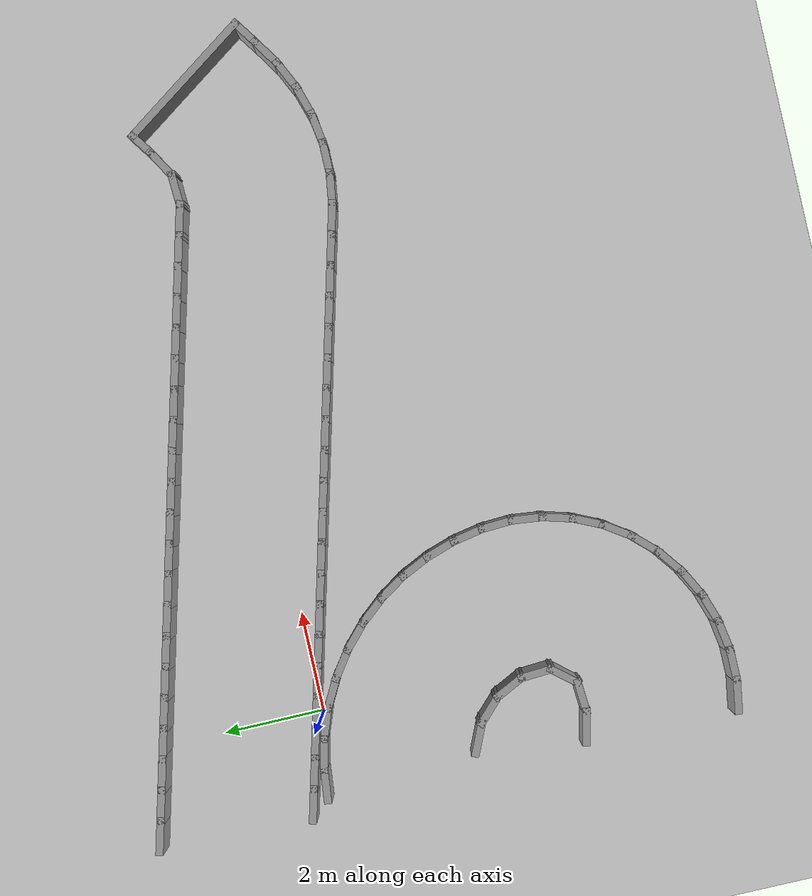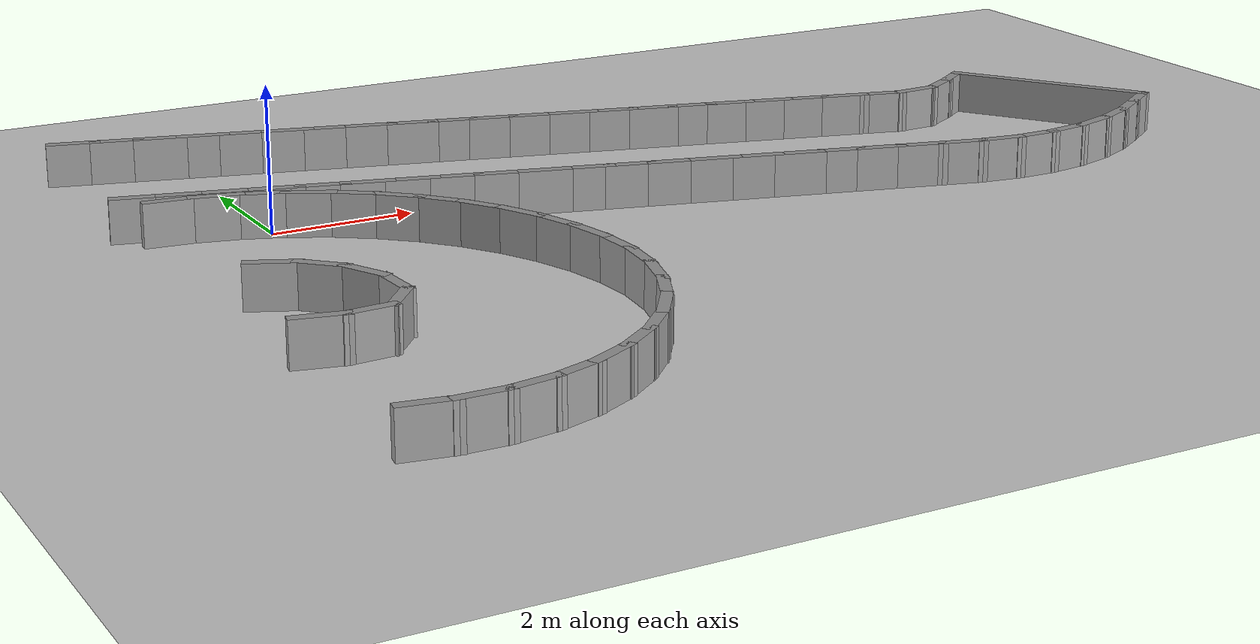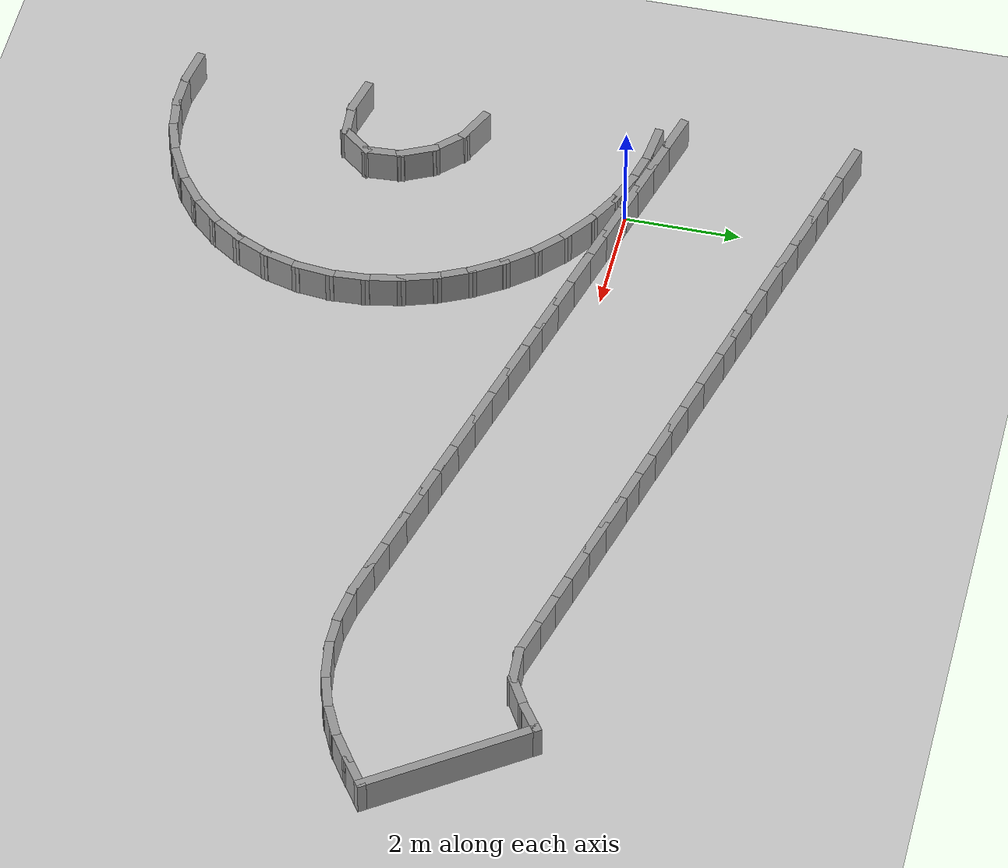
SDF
<sdf version="1.7">
 <world name="default">
  <model name="ground_plane">
   <static>1</static>
   <link name="link">
    <collision name="collision">
     <geometry><plane><normal>0 0 1</normal><size>100 100</size></plane></geometry>
     <surface><friction><ode><mu>100</mu><mu2>50</mu2></ode></friction></surface>
    </collision>
    <visual name="visual">
     <cast_shadows>0</cast_shadows>
     <geometry><plane><normal>0 0 1</normal><size>100 100</size></plane></geometry>
     <material>
      <script><uri>file://media/materials/scripts/gazebo.material</uri><name>Gazebo/Grey</name></script>
     </material>
    </visual>
   </link>
  </model>
  <model name="rand_turn_01">
   <link name="Wall_9">
    <collision name="Wall_9_Collision">
     <geometry><box><size>0.7500 0.1500 0.6000</size></box></geometry>
     <pose>0 0 0.3000 0 -0 0</pose>
    </collision>
    <visual name="Wall_9_Visual">
     <pose>0 0 0.3000 0 -0 0</pose>
     <geometry><box><size>0.7500 0.1500 0.6000</size></box></geometry>
     <material>
      <script><uri>file://media/materials/scripts/gazebo.material</uri><name>Gazebo/Grey</name></script>
      <ambient>1 1 1 1</ambient>
     </material>
    </visual>
    <pose>-1.3249 -4.9827 0 0 -0 -0.21750</pose>
   </link>
   <link name="Wall_10">
    <collision name="Wall_10_Collision">
     <geometry><box><size>0.7354 0.1500 0.6000</size></box></geometry>
     <pose>0 0 0.3000 0 -0 0</pose>
    </collision>
    <visual name="Wall_10_Visual">
     <pose>0 0 0.3000 0 -0 0</pose>
     <geometry><box><size>0.7354 0.1500 0.6000</size></box></geometry>
     <material>
      <script><uri>file://media/materials/scripts/gazebo.material</uri><name>Gazebo/Grey</name></script>
      <ambient>1 1 1 1</ambient>
     </material>
    </visual>
    <pose>-0.7400 -5.0276 0 0 -0 0.06791</pose>
   </link>
   <link name="Wall_11">
    <collision name="Wall_11_Collision">
     <geometry><box><size>0.7332 0.1500 0.6000</size></box></geometry>
     <pose>0 0 0.3000 0 -0 0</pose>
    </collision>
    <visual name="Wall_11_Visual">
     <pose>0 0 0.3000 0 -0 0</pose>
     <geometry><box><size>0.7332 0.1500 0.6000</size></box></geometry>
     <material>
      <script><uri>file://media/materials/scripts/gazebo.material</uri><name>Gazebo/Grey</name></script>
      <ambient>1 1 1 1</ambient>
     </material>
    </visual>
    <pose>-0.2620 -4.7831 0 0 -0 0.87923</pose>
   </link>
   <link name="Wall_12">
    <collision name="Wall_12_Collision">
     <geometry><box><size>0.7419 0.1500 0.6000</size></box></geometry>
     <pose>0 0 0.3000 0 -0 0</pose>
    </collision>
    <visual name="Wall_12_Visual">
     <pose>0 0 0.3000 0 -0 0</pose>
     <geometry><box><size>0.7419 0.1500 0.6000</size></box></geometry>
     <material>
      <script><uri>file://media/materials/scripts/gazebo.material</uri><name>Gazebo/Grey</name></script>
      <ambient>1 1 1 1</ambient>
     </material>
    </visual>
    <pose>-0.0944 -4.2631 0 0 -0 1.63312</pose>
   </link>
   <link name="Wall_13">
    <collision name="Wall_13_Collision">
     <geometry><box><size>0.7470 0.1500 0.6000</size></box></geometry>
     <pose>0 0 0.3000 0 -0 0</pose>
    </collision>
    <visual name="Wall_13_Visual">
     <pose>0 0 0.3000 0 -0 0</pose>
     <geometry><box><size>0.7470 0.1500 0.6000</size></box></geometry>
     <material>
      <script><uri>file://media/materials/scripts/gazebo.material</uri><name>Gazebo/Grey</name></script>
      <ambient>1 1 1 1</ambient>
     </material>
    </visual>
    <pose>-0.2440 -3.6996 0 0 -0 2.02571</pose>
   </link>
   <link name="Wall_14">
    <collision name="Wall_14_Collision">
     <geometry><box><size>0.7470 0.1500 0.6000</size></box></geometry>
     <pose>0 0 0.3000 0 -0 0</pose>
    </collision>
    <visual name="Wall_14_Visual">
     <pose>0 0 0.3000 0 -0 0</pose>
     <geometry><box><size>0.7470 0.1500 0.6000</size></box></geometry>
     <material>
      <script><uri>file://media/materials/scripts/gazebo.material</uri><name>Gazebo/Grey</name></script>
      <ambient>1 1 1 1</ambient>
     </material>
    </visual>
    <pose>-0.5888 -3.2229 0 0 -0 2.36825</pose>
   </link>
   <link name="Wall_15">
    <collision name="Wall_15_Collision">
     <geometry><box><size>0.7466 0.1500 0.6000</size></box></geometry>
     <pose>0 0 0.3000 0 -0 0</pose>
    </collision>
    <visual name="Wall_15_Visual">
     <pose>0 0 0.3000 0 -0 0</pose>
     <geometry><box><size>0.7466 0.1500 0.6000</size></box></geometry>
     <material>
      <script><uri>file://media/materials/scripts/gazebo.material</uri><name>Gazebo/Grey</name></script>
      <ambient>1 1 1 1</ambient>
     </material>
    </visual>
    <pose>-1.0746 -2.8924 0 0 -0 2.72031</pose>
   </link>
   <link name="Wall_55">
    <collision name="Wall_55_Collision">
     <geometry><box><size>0.7500 0.1500 0.6000</size></box></geometry>
     <pose>0 0 0.3000 0 -0 0</pose>
    </collision>
    <visual name="Wall_55_Visual">
     <pose>0 0 0.3000 0 -0 0</pose>
     <geometry><box><size>0.7500 0.1500 0.6000</size></box></geometry>
     <material>
      <script><uri>file://media/materials/scripts/gazebo.material</uri><name>Gazebo/Grey</name></script>
      <ambient>1 1 1 1</ambient>
     </material>
    </visual>
    <pose>-1.5636 3.5774 0 0 -0 -0.25506</pose>
   </link>
   <link name="Wall_56">
    <collision name="Wall_56_Collision">
     <geometry><box><size>0.7500 0.1500 0.6000</size></box></geometry>
     <pose>0 0 0.3000 0 -0 0</pose>
    </collision>
    <visual name="Wall_56_Visual">
     <pose>0 0 0.3000 0 -0 0</pose>
     <geometry><box><size>0.7500 0.1500 0.6000</size></box></geometry>
     <material>
      <script><uri>file://media/materials/scripts/gazebo.material</uri><name>Gazebo/Grey</name></script>
      <ambient>1 1 1 1</ambient>
     </material>
    </visual>
    <pose>-0.9831 3.4260 0 0 -0 -0.25506</pose>
   </link>
   <link name="Wall_57">
    <collision name="Wall_57_Collision">
     <geometry><box><size>0.7500 0.1500 0.6000</size></box></geometry>
     <pose>0 0 0.3000 0 -0 0</pose>
    </collision>
    <visual name="Wall_57_Visual">
     <pose>0 0 0.3000 0 -0 0</pose>
     <geometry><box><size>0.7500 0.1500 0.6000</size></box></geometry>
     <material>
      <script><uri>file://media/materials/scripts/gazebo.material</uri><name>Gazebo/Grey</name></script>
      <ambient>1 1 1 1</ambient>
     </material>
    </visual>
    <pose>-0.4025 3.2746 0 0 -0 -0.25506</pose>
   </link>
   <link name="Wall_58">
    <collision name="Wall_58_Collision">
     <geometry><box><size>0.7500 0.1500 0.6000</size></box></geometry>
     <pose>0 0 0.3000 0 -0 0</pose>
    </collision>
    <visual name="Wall_58_Visual">
     <pose>0 0 0.3000 0 -0 0</pose>
     <geometry><box><size>0.7500 0.1500 0.6000</size></box></geometry>
     <material>
      <script><uri>file://media/materials/scripts/gazebo.material</uri><name>Gazebo/Grey</name></script>
      <ambient>1 1 1 1</ambient>
     </material>
    </visual>
    <pose>0.1781 3.1233 0 0 -0 -0.25506</pose>
   </link>
   <link name="Wall_59">
    <collision name="Wall_59_Collision">
     <geometry><box><size>0.7500 0.1500 0.6000</size></box></geometry>
     <pose>0 0 0.3000 0 -0 0</pose>
    </collision>
    <visual name="Wall_59_Visual">
     <pose>0 0 0.3000 0 -0 0</pose>
     <geometry><box><size>0.7500 0.1500 0.6000</size></box></geometry>
     <material>
      <script><uri>file://media/materials/scripts/gazebo.material</uri><name>Gazebo/Grey</name></script>
      <ambient>1 1 1 1</ambient>
     </material>
    </visual>
    <pose>0.7587 2.9719 0 0 -0 -0.25506</pose>
   </link>
   <link name="Wall_60">
    <collision name="Wall_60_Collision">
     <geometry><box><size>0.7500 0.1500 0.6000</size></box></geometry>
     <pose>0 0 0.3000 0 -0 0</pose>
    </collision>
    <visual name="Wall_60_Visual">
     <pose>0 0 0.3000 0 -0 0</pose>
     <geometry><box><size>0.7500 0.1500 0.6000</size></box></geometry>
     <material>
      <script><uri>file://media/materials/scripts/gazebo.material</uri><name>Gazebo/Grey</name></script>
      <ambient>1 1 1 1</ambient>
     </material>
    </visual>
    <pose>1.3393 2.8205 0 0 -0 -0.25506</pose>
   </link>
   <link name="Wall_61">
    <collision name="Wall_61_Collision">
     <geometry><box><size>0.7500 0.1500 0.6000</size></box></geometry>
     <pose>0 0 0.3000 0 -0 0</pose>
    </collision>
    <visual name="Wall_61_Visual">
     <pose>0 0 0.3000 0 -0 0</pose>
     <geometry><box><size>0.7500 0.1500 0.6000</size></box></geometry>
     <material>
      <script><uri>file://media/materials/scripts/gazebo.material</uri><name>Gazebo/Grey</name></script>
      <ambient>1 1 1 1</ambient>
     </material>
    </visual>
    <pose>1.9199 2.6691 0 0 -0 -0.25506</pose>
   </link>
   <link name="Wall_62">
    <collision name="Wall_62_Collision">
     <geometry><box><size>0.7500 0.1500 0.6000</size></box></geometry>
     <pose>0 0 0.3000 0 -0 0</pose>
    </collision>
    <visual name="Wall_62_Visual">
     <pose>0 0 0.3000 0 -0 0</pose>
     <geometry><box><size>0.7500 0.1500 0.6000</size></box></geometry>
     <material>
      <script><uri>file://media/materials/scripts/gazebo.material</uri><name>Gazebo/Grey</name></script>
      <ambient>1 1 1 1</ambient>
     </material>
    </visual>
    <pose>2.5005 2.5177 0 0 -0 -0.25506</pose>
   </link>
   <link name="Wall_63">
    <collision name="Wall_63_Collision">
     <geometry><box><size>0.7500 0.1500 0.6000</size></box></geometry>
     <pose>0 0 0.3000 0 -0 0</pose>
    </collision>
    <visual name="Wall_63_Visual">
     <pose>0 0 0.3000 0 -0 0</pose>
     <geometry><box><size>0.7500 0.1500 0.6000</size></box></geometry>
     <material>
      <script><uri>file://media/materials/scripts/gazebo.material</uri><name>Gazebo/Grey</name></script>
      <ambient>1 1 1 1</ambient>
     </material>
    </visual>
    <pose>3.0811 2.3663 0 0 -0 -0.25506</pose>
   </link>
   <link name="Wall_64">
    <collision name="Wall_64_Collision">
     <geometry><box><size>0.7500 0.1500 0.6000</size></box></geometry>
     <pose>0 0 0.3000 0 -0 0</pose>
    </collision>
    <visual name="Wall_64_Visual">
     <pose>0 0 0.3000 0 -0 0</pose>
     <geometry><box><size>0.7500 0.1500 0.6000</size></box></geometry>
     <material>
      <script><uri>file://media/materials/scripts/gazebo.material</uri><name>Gazebo/Grey</name></script>
      <ambient>1 1 1 1</ambient>
     </material>
    </visual>
    <pose>3.6617 2.2150 0 0 -0 -0.25506</pose>
   </link>
   <link name="Wall_65">
    <collision name="Wall_65_Collision">
     <geometry><box><size>0.7500 0.1500 0.6000</size></box></geometry>
     <pose>0 0 0.3000 0 -0 0</pose>
    </collision>
    <visual name="Wall_65_Visual">
     <pose>0 0 0.3000 0 -0 0</pose>
     <geometry><box><size>0.7500 0.1500 0.6000</size></box></geometry>
     <material>
      <script><uri>file://media/materials/scripts/gazebo.material</uri><name>Gazebo/Grey</name></script>
      <ambient>1 1 1 1</ambient>
     </material>
    </visual>
    <pose>4.2422 2.0636 0 0 -0 -0.25506</pose>
   </link>
   <link name="Wall_66">
    <collision name="Wall_66_Collision">
     <geometry><box><size>0.7500 0.1500 0.6000</size></box></geometry>
     <pose>0 0 0.3000 0 -0 0</pose>
    </collision>
    <visual name="Wall_66_Visual">
     <pose>0 0 0.3000 0 -0 0</pose>
     <geometry><box><size>0.7500 0.1500 0.6000</size></box></geometry>
     <material>
      <script><uri>file://media/materials/scripts/gazebo.material</uri><name>Gazebo/Grey</name></script>
      <ambient>1 1 1 1</ambient>
     </material>
    </visual>
    <pose>4.8228 1.9122 0 0 -0 -0.25506</pose>
   </link>
   <link name="Wall_67">
    <collision name="Wall_67_Collision">
     <geometry><box><size>0.7500 0.1500 0.6000</size></box></geometry>
     <pose>0 0 0.3000 0 -0 0</pose>
    </collision>
    <visual name="Wall_67_Visual">
     <pose>0 0 0.3000 0 -0 0</pose>
     <geometry><box><size>0.7500 0.1500 0.6000</size></box></geometry>
     <material>
      <script><uri>file://media/materials/scripts/gazebo.material</uri><name>Gazebo/Grey</name></script>
      <ambient>1 1 1 1</ambient>
     </material>
    </visual>
    <pose>5.4034 1.7608 0 0 -0 -0.25506</pose>
   </link>
   <link name="Wall_68">
    <collision name="Wall_68_Collision">
     <geometry><box><size>0.7500 0.1500 0.6000</size></box></geometry>
     <pose>0 0 0.3000 0 -0 0</pose>
    </collision>
    <visual name="Wall_68_Visual">
     <pose>0 0 0.3000 0 -0 0</pose>
     <geometry><box><size>0.7500 0.1500 0.6000</size></box></geometry>
     <material>
      <script><uri>file://media/materials/scripts/gazebo.material</uri><name>Gazebo/Grey</name></script>
      <ambient>1 1 1 1</ambient>
     </material>
    </visual>
    <pose>5.9840 1.6094 0 0 -0 -0.25506</pose>
   </link>
   <link name="Wall_69">
    <collision name="Wall_69_Collision">
     <geometry><box><size>0.7500 0.1500 0.6000</size></box></geometry>
     <pose>0 0 0.3000 0 -0 0</pose>
    </collision>
    <visual name="Wall_69_Visual">
     <pose>0 0 0.3000 0 -0 0</pose>
     <geometry><box><size>0.7500 0.1500 0.6000</size></box></geometry>
     <material>
      <script><uri>file://media/materials/scripts/gazebo.material</uri><name>Gazebo/Grey</name></script>
      <ambient>1 1 1 1</ambient>
     </material>
    </visual>
    <pose>6.5646 1.4580 0 0 -0 -0.25506</pose>
   </link>
   <link name="Wall_70">
    <collision name="Wall_70_Collision">
     <geometry><box><size>0.7500 0.1500 0.6000</size></box></geometry>
     <pose>0 0 0.3000 0 -0 0</pose>
    </collision>
    <visual name="Wall_70_Visual">
     <pose>0 0 0.3000 0 -0 0</pose>
     <geometry><box><size>0.7500 0.1500 0.6000</size></box></geometry>
     <material>
      <script><uri>file://media/materials/scripts/gazebo.material</uri><name>Gazebo/Grey</name></script>
      <ambient>1 1 1 1</ambient>
     </material>
    </visual>
    <pose>7.1452 1.3067 0 0 -0 -0.25506</pose>
   </link>
   <link name="Wall_71">
    <collision name="Wall_71_Collision">
     <geometry><box><size>0.7500 0.1500 0.6000</size></box></geometry>
     <pose>0 0 0.3000 0 -0 0</pose>
    </collision>
    <visual name="Wall_71_Visual">
     <pose>0 0 0.3000 0 -0 0</pose>
     <geometry><box><size>0.7500 0.1500 0.6000</size></box></geometry>
     <material>
      <script><uri>file://media/materials/scripts/gazebo.material</uri><name>Gazebo/Grey</name></script>
      <ambient>1 1 1 1</ambient>
     </material>
    </visual>
    <pose>7.7258 1.1553 0 0 -0 -0.25506</pose>
   </link>
   <link name="Wall_72">
    <collision name="Wall_72_Collision">
     <geometry><box><size>0.7500 0.1500 0.6000</size></box></geometry>
     <pose>0 0 0.3000 0 -0 0</pose>
    </collision>
    <visual name="Wall_72_Visual">
     <pose>0 0 0.3000 0 -0 0</pose>
     <geometry><box><size>0.7500 0.1500 0.6000</size></box></geometry>
     <material>
      <script><uri>file://media/materials/scripts/gazebo.material</uri><name>Gazebo/Grey</name></script>
      <ambient>1 1 1 1</ambient>
     </material>
    </visual>
    <pose>8.3064 1.0039 0 0 -0 -0.25506</pose>
   </link>
   <link name="Wall_73">
    <collision name="Wall_73_Collision">
     <geometry><box><size>0.7500 0.1500 0.6000</size></box></geometry>
     <pose>0 0 0.3000 0 -0 0</pose>
    </collision>
    <visual name="Wall_73_Visual">
     <pose>0 0 0.3000 0 -0 0</pose>
     <geometry><box><size>0.7500 0.1500 0.6000</size></box></geometry>
     <material>
      <script><uri>file://media/materials/scripts/gazebo.material</uri><name>Gazebo/Grey</name></script>
      <ambient>1 1 1 1</ambient>
     </material>
    </visual>
    <pose>8.8869 0.8525 0 0 -0 -0.25506</pose>
   </link>
   <link name="Wall_74">
    <collision name="Wall_74_Collision">
     <geometry><box><size>0.7500 0.1500 0.6000</size></box></geometry>
     <pose>0 0 0.3000 0 -0 0</pose>
    </collision>
    <visual name="Wall_74_Visual">
     <pose>0 0 0.3000 0 -0 0</pose>
     <geometry><box><size>0.7500 0.1500 0.6000</size></box></geometry>
     <material>
      <script><uri>file://media/materials/scripts/gazebo.material</uri><name>Gazebo/Grey</name></script>
      <ambient>1 1 1 1</ambient>
     </material>
    </visual>
    <pose>9.4675 0.7011 0 0 -0 -0.25506</pose>
   </link>
   <link name="Wall_75">
    <collision name="Wall_75_Collision">
     <geometry><box><size>0.7500 0.1500 0.6000</size></box></geometry>
     <pose>0 0 0.3000 0 -0 0</pose>
    </collision>
    <visual name="Wall_75_Visual">
     <pose>0 0 0.3000 0 -0 0</pose>
     <geometry><box><size>0.7500 0.1500 0.6000</size></box></geometry>
     <material>
      <script><uri>file://media/materials/scripts/gazebo.material</uri><name>Gazebo/Grey</name></script>
      <ambient>1 1 1 1</ambient>
     </material>
    </visual>
    <pose>10.0482 0.5502 0 0 -0 -0.25346</pose>
   </link>
   <link name="Wall_76">
    <collision name="Wall_76_Collision">
     <geometry><box><size>0.7429 0.1500 0.6000</size></box></geometry>
     <pose>0 0 0.3000 0 -0 0</pose>
    </collision>
    <visual name="Wall_76_Visual">
     <pose>0 0 0.3000 0 -0 0</pose>
     <geometry><box><size>0.7429 0.1500 0.6000</size></box></geometry>
     <material>
      <script><uri>file://media/materials/scripts/gazebo.material</uri><name>Gazebo/Grey</name></script>
      <ambient>1 1 1 1</ambient>
     </material>
    </visual>
    <pose>10.6347 0.4905 0 0 -0 0.05247</pose>
   </link>
   <link name="Wall_77">
    <collision name="Wall_77_Collision">
     <geometry><box><size>0.7473 0.1500 0.6000</size></box></geometry>
     <pose>0 0 0.3000 0 -0 0</pose>
    </collision>
    <visual name="Wall_77_Visual">
     <pose>0 0 0.3000 0 -0 0</pose>
     <geometry><box><size>0.7473 0.1500 0.6000</size></box></geometry>
     <material>
      <script><uri>file://media/materials/scripts/gazebo.material</uri><name>Gazebo/Grey</name></script>
      <ambient>1 1 1 1</ambient>
     </material>
    </visual>
    <pose>11.1882 0.6574 0 0 -0 0.53139</pose>
   </link>
   <link name="Wall_78">
    <collision name="Wall_78_Collision">
     <geometry><box><size>0.6250 0.1500 0.6000</size></box></geometry>
     <pose>0 0 0.3000 0 -0 0</pose>
    </collision>
    <visual name="Wall_78_Visual">
     <pose>0 0 0.3000 0 -0 0</pose>
     <geometry><box><size>0.6250 0.1500 0.6000</size></box></geometry>
     <material>
      <script><uri>file://media/materials/scripts/gazebo.material</uri><name>Gazebo/Grey</name></script>
      <ambient>1 1 1 1</ambient>
     </material>
    </visual>
    <pose>11.6405 0.9446 0 0 -0 0.60888</pose>
   </link>
   <link name="Wall_89">
    <collision name="Wall_89_Collision">
     <geometry><box><size>0.7495 0.1500 0.6000</size></box></geometry>
     <pose>0 0 0.3000 0 -0 0</pose>
    </collision>
    <visual name="Wall_89_Visual">
     <pose>0 0 0.3000 0 -0 0</pose>
     <geometry><box><size>0.7495 0.1500 0.6000</size></box></geometry>
     <material>
      <script><uri>file://media/materials/scripts/gazebo.material</uri><name>Gazebo/Grey</name></script>
      <ambient>1 1 1 1</ambient>
     </material>
    </visual>
    <pose>-1.3753 -7.9876 0 0 -0 -0.16103</pose>
   </link>
   <link name="Wall_90">
    <collision name="Wall_90_Collision">
     <geometry><box><size>0.7493 0.1500 0.6000</size></box></geometry>
     <pose>0 0 0.3000 0 -0 0</pose>
    </collision>
    <visual name="Wall_90_Visual">
     <pose>0 0 0.3000 0 -0 0</pose>
     <geometry><box><size>0.7493 0.1500 0.6000</size></box></geometry>
     <material>
      <script><uri>file://media/materials/scripts/gazebo.material</uri><name>Gazebo/Grey</name></script>
      <ambient>1 1 1 1</ambient>
     </material>
    </visual>
    <pose>-0.7798 -8.0354 0 0 -0 0.00072</pose>
   </link>
   <link name="Wall_91">
    <collision name="Wall_91_Collision">
     <geometry><box><size>0.7493 0.1500 0.6000</size></box></geometry>
     <pose>0 0 0.3000 0 -0 0</pose>
    </collision>
    <visual name="Wall_91_Visual">
     <pose>0 0 0.3000 0 -0 0</pose>
     <geometry><box><size>0.7493 0.1500 0.6000</size></box></geometry>
     <material>
      <script><uri>file://media/materials/scripts/gazebo.material</uri><name>Gazebo/Grey</name></script>
      <ambient>1 1 1 1</ambient>
     </material>
    </visual>
    <pose>-0.1844 -7.9871 0 0 -0 0.16119</pose>
   </link>
   <link name="Wall_92">
    <collision name="Wall_92_Collision">
     <geometry><box><size>0.7493 0.1500 0.6000</size></box></geometry>
     <pose>0 0 0.3000 0 -0 0</pose>
    </collision>
    <visual name="Wall_92_Visual">
     <pose>0 0 0.3000 0 -0 0</pose>
     <geometry><box><size>0.7493 0.1500 0.6000</size></box></geometry>
     <material>
      <script><uri>file://media/materials/scripts/gazebo.material</uri><name>Gazebo/Grey</name></script>
      <ambient>1 1 1 1</ambient>
     </material>
    </visual>
    <pose>0.3954 -7.8435 0 0 -0 0.32450</pose>
   </link>
   <link name="Wall_93">
    <collision name="Wall_93_Collision">
     <geometry><box><size>0.7493 0.1500 0.6000</size></box></geometry>
     <pose>0 0 0.3000 0 -0 0</pose>
    </collision>
    <visual name="Wall_93_Visual">
     <pose>0 0 0.3000 0 -0 0</pose>
     <geometry><box><size>0.7493 0.1500 0.6000</size></box></geometry>
     <material>
      <script><uri>file://media/materials/scripts/gazebo.material</uri><name>Gazebo/Grey</name></script>
      <ambient>1 1 1 1</ambient>
     </material>
    </visual>
    <pose>0.9442 -7.6077 0 0 -0 0.48725</pose>
   </link>
   <link name="Wall_94">
    <collision name="Wall_94_Collision">
     <geometry><box><size>0.7493 0.1500 0.6000</size></box></geometry>
     <pose>0 0 0.3000 0 -0 0</pose>
    </collision>
    <visual name="Wall_94_Visual">
     <pose>0 0 0.3000 0 -0 0</pose>
     <geometry><box><size>0.7493 0.1500 0.6000</size></box></geometry>
     <material>
      <script><uri>file://media/materials/scripts/gazebo.material</uri><name>Gazebo/Grey</name></script>
      <ambient>1 1 1 1</ambient>
     </material>
    </visual>
    <pose>1.4478 -7.2865 0 0 -0 0.64822</pose>
   </link>
   <link name="Wall_95">
    <collision name="Wall_95_Collision">
     <geometry><box><size>0.7493 0.1500 0.6000</size></box></geometry>
     <pose>0 0 0.3000 0 -0 0</pose>
    </collision>
    <visual name="Wall_95_Visual">
     <pose>0 0 0.3000 0 -0 0</pose>
     <geometry><box><size>0.7493 0.1500 0.6000</size></box></geometry>
     <material>
      <script><uri>file://media/materials/scripts/gazebo.material</uri><name>Gazebo/Grey</name></script>
      <ambient>1 1 1 1</ambient>
     </material>
    </visual>
    <pose>1.8926 -6.8878 0 0 -0 0.81331</pose>
   </link>
   <link name="Wall_96">
    <collision name="Wall_96_Collision">
     <geometry><box><size>0.7493 0.1500 0.6000</size></box></geometry>
     <pose>0 0 0.3000 0 -0 0</pose>
    </collision>
    <visual name="Wall_96_Visual">
     <pose>0 0 0.3000 0 -0 0</pose>
     <geometry><box><size>0.7493 0.1500 0.6000</size></box></geometry>
     <material>
      <script><uri>file://media/materials/scripts/gazebo.material</uri><name>Gazebo/Grey</name></script>
      <ambient>1 1 1 1</ambient>
     </material>
    </visual>
    <pose>2.2669 -6.4223 0 0 -0 0.97378</pose>
   </link>
   <link name="Wall_97">
    <collision name="Wall_97_Collision">
     <geometry><box><size>0.7493 0.1500 0.6000</size></box></geometry>
     <pose>0 0 0.3000 0 -0 0</pose>
    </collision>
    <visual name="Wall_97_Visual">
     <pose>0 0 0.3000 0 -0 0</pose>
     <geometry><box><size>0.7493 0.1500 0.6000</size></box></geometry>
     <material>
      <script><uri>file://media/materials/scripts/gazebo.material</uri><name>Gazebo/Grey</name></script>
      <ambient>1 1 1 1</ambient>
     </material>
    </visual>
    <pose>2.5612 -5.9025 0 0 -0 1.13752</pose>
   </link>
   <link name="Wall_98">
    <collision name="Wall_98_Collision">
     <geometry><box><size>0.7493 0.1500 0.6000</size></box></geometry>
     <pose>0 0 0.3000 0 -0 0</pose>
    </collision>
    <visual name="Wall_98_Visual">
     <pose>0 0 0.3000 0 -0 0</pose>
     <geometry><box><size>0.7493 0.1500 0.6000</size></box></geometry>
     <material>
      <script><uri>file://media/materials/scripts/gazebo.material</uri><name>Gazebo/Grey</name></script>
      <ambient>1 1 1 1</ambient>
     </material>
    </visual>
    <pose>2.7672 -5.3419 0 0 -0 1.29983</pose>
   </link>
   <link name="Wall_99">
    <collision name="Wall_99_Collision">
     <geometry><box><size>0.7493 0.1500 0.6000</size></box></geometry>
     <pose>0 0 0.3000 0 -0 0</pose>
    </collision>
    <visual name="Wall_99_Visual">
     <pose>0 0 0.3000 0 -0 0</pose>
     <geometry><box><size>0.7493 0.1500 0.6000</size></box></geometry>
     <material>
      <script><uri>file://media/materials/scripts/gazebo.material</uri><name>Gazebo/Grey</name></script>
      <ambient>1 1 1 1</ambient>
     </material>
    </visual>
    <pose>2.8801 -4.7553 0 0 -0 1.46123</pose>
   </link>
   <link name="Wall_100">
    <collision name="Wall_100_Collision">
     <geometry><box><size>0.7493 0.1500 0.6000</size></box></geometry>
     <pose>0 0 0.3000 0 -0 0</pose>
    </collision>
    <visual name="Wall_100_Visual">
     <pose>0 0 0.3000 0 -0 0</pose>
     <geometry><box><size>0.7493 0.1500 0.6000</size></box></geometry>
     <material>
      <script><uri>file://media/materials/scripts/gazebo.material</uri><name>Gazebo/Grey</name></script>
      <ambient>1 1 1 1</ambient>
     </material>
    </visual>
    <pose>2.8967 -4.1582 0 0 -0 1.62496</pose>
   </link>
   <link name="Wall_101">
    <collision name="Wall_101_Collision">
     <geometry><box><size>0.7496 0.1500 0.6000</size></box></geometry>
     <pose>0 0 0.3000 0 -0 0</pose>
    </collision>
    <visual name="Wall_101_Visual">
     <pose>0 0 0.3000 0 -0 0</pose>
     <geometry><box><size>0.7496 0.1500 0.6000</size></box></geometry>
     <material>
      <script><uri>file://media/materials/scripts/gazebo.material</uri><name>Gazebo/Grey</name></script>
      <ambient>1 1 1 1</ambient>
     </material>
    </visual>
    <pose>2.8236 -3.5647 0 0 -0 1.76172</pose>
   </link>
   <link name="Wall_102">
    <collision name="Wall_102_Collision">
     <geometry><box><size>0.7496 0.1500 0.6000</size></box></geometry>
     <pose>0 0 0.3000 0 -0 0</pose>
    </collision>
    <visual name="Wall_102_Visual">
     <pose>0 0 0.3000 0 -0 0</pose>
     <geometry><box><size>0.7496 0.1500 0.6000</size></box></geometry>
     <material>
      <script><uri>file://media/materials/scripts/gazebo.material</uri><name>Gazebo/Grey</name></script>
      <ambient>1 1 1 1</ambient>
     </material>
    </visual>
    <pose>2.6729 -2.9856 0 0 -0 1.88892</pose>
   </link>
   <link name="Wall_103">
    <collision name="Wall_103_Collision">
     <geometry><box><size>0.7496 0.1500 0.6000</size></box></geometry>
     <pose>0 0 0.3000 0 -0 0</pose>
    </collision>
    <visual name="Wall_103_Visual">
     <pose>0 0 0.3000 0 -0 0</pose>
     <geometry><box><size>0.7496 0.1500 0.6000</size></box></geometry>
     <material>
      <script><uri>file://media/materials/scripts/gazebo.material</uri><name>Gazebo/Grey</name></script>
      <ambient>1 1 1 1</ambient>
     </material>
    </visual>
    <pose>2.4500 -2.4303 0 0 -0 2.01611</pose>
   </link>
   <link name="Wall_104">
    <collision name="Wall_104_Collision">
     <geometry><box><size>0.7496 0.1500 0.6000</size></box></geometry>
     <pose>0 0 0.3000 0 -0 0</pose>
    </collision>
    <visual name="Wall_104_Visual">
     <pose>0 0 0.3000 0 -0 0</pose>
     <geometry><box><size>0.7496 0.1500 0.6000</size></box></geometry>
     <material>
      <script><uri>file://media/materials/scripts/gazebo.material</uri><name>Gazebo/Grey</name></script>
      <ambient>1 1 1 1</ambient>
     </material>
    </visual>
    <pose>2.1583 -1.9078 0 0 -0 2.14403</pose>
   </link>
   <link name="Wall_105">
    <collision name="Wall_105_Collision">
     <geometry><box><size>0.7496 0.1500 0.6000</size></box></geometry>
     <pose>0 0 0.3000 0 -0 0</pose>
    </collision>
    <visual name="Wall_105_Visual">
     <pose>0 0 0.3000 0 -0 0</pose>
     <geometry><box><size>0.7496 0.1500 0.6000</size></box></geometry>
     <material>
      <script><uri>file://media/materials/scripts/gazebo.material</uri><name>Gazebo/Grey</name></script>
      <ambient>1 1 1 1</ambient>
     </material>
    </visual>
    <pose>1.8024 -1.4268 0 0 -0 2.27138</pose>
   </link>
   <link name="Wall_106">
    <collision name="Wall_106_Collision">
     <geometry><box><size>0.7496 0.1500 0.6000</size></box></geometry>
     <pose>0 0 0.3000 0 -0 0</pose>
    </collision>
    <visual name="Wall_106_Visual">
     <pose>0 0 0.3000 0 -0 0</pose>
     <geometry><box><size>0.7496 0.1500 0.6000</size></box></geometry>
     <material>
      <script><uri>file://media/materials/scripts/gazebo.material</uri><name>Gazebo/Grey</name></script>
      <ambient>1 1 1 1</ambient>
     </material>
    </visual>
    <pose>1.3884 -0.9948 0 0 -0 2.39858</pose>
   </link>
   <link name="Wall_107">
    <collision name="Wall_107_Collision">
     <geometry><box><size>0.7496 0.1500 0.6000</size></box></geometry>
     <pose>0 0 0.3000 0 -0 0</pose>
    </collision>
    <visual name="Wall_107_Visual">
     <pose>0 0 0.3000 0 -0 0</pose>
     <geometry><box><size>0.7496 0.1500 0.6000</size></box></geometry>
     <material>
      <script><uri>file://media/materials/scripts/gazebo.material</uri><name>Gazebo/Grey</name></script>
      <ambient>1 1 1 1</ambient>
     </material>
    </visual>
    <pose>0.9229 -0.6188 0 0 -0 2.52578</pose>
   </link>
   <link name="Wall_108">
    <collision name="Wall_108_Collision">
     <geometry><box><size>0.7495 0.1500 0.6000</size></box></geometry>
     <pose>0 0 0.3000 0 -0 0</pose>
    </collision>
    <visual name="Wall_108_Visual">
     <pose>0 0 0.3000 0 -0 0</pose>
     <geometry><box><size>0.7495 0.1500 0.6000</size></box></geometry>
     <material>
      <script><uri>file://media/materials/scripts/gazebo.material</uri><name>Gazebo/Grey</name></script>
      <ambient>1 1 1 1</ambient>
     </material>
    </visual>
    <pose>0.4134 -0.3052 0 0 -0 2.65387</pose>
   </link>
   <link name="Wall_109">
    <collision name="Wall_109_Collision">
     <geometry><box><size>0.7495 0.1500 0.6000</size></box></geometry>
     <pose>0 0 0.3000 0 -0 0</pose>
    </collision>
    <visual name="Wall_109_Visual">
     <pose>0 0 0.3000 0 -0 0</pose>
     <geometry><box><size>0.7495 0.1500 0.6000</size></box></geometry>
     <material>
      <script><uri>file://media/materials/scripts/gazebo.material</uri><name>Gazebo/Grey</name></script>
      <ambient>1 1 1 1</ambient>
     </material>
    </visual>
    <pose>-0.1325 -0.0605 0 0 -0 2.78659</pose>
   </link>
   <link name="Wall_110">
    <collision name="Wall_110_Collision">
     <geometry><box><size>0.7496 0.1500 0.6000</size></box></geometry>
     <pose>0 0 0.3000 0 -0 0</pose>
    </collision>
    <visual name="Wall_110_Visual">
     <pose>0 0 0.3000 0 -0 0</pose>
     <geometry><box><size>0.7496 0.1500 0.6000</size></box></geometry>
     <material>
      <script><uri>file://media/materials/scripts/gazebo.material</uri><name>Gazebo/Grey</name></script>
      <ambient>1 1 1 1</ambient>
     </material>
    </visual>
    <pose>-0.7056 0.1113 0 0 -0 2.91398</pose>
   </link>
   <link name="Wall_111">
    <collision name="Wall_111_Collision">
     <geometry><box><size>0.7496 0.1500 0.6000</size></box></geometry>
     <pose>0 0 0.3000 0 -0 0</pose>
    </collision>
    <visual name="Wall_111_Visual">
     <pose>0 0 0.3000 0 -0 0</pose>
     <geometry><box><size>0.7496 0.1500 0.6000</size></box></geometry>
     <material>
      <script><uri>file://media/materials/scripts/gazebo.material</uri><name>Gazebo/Grey</name></script>
      <ambient>1 1 1 1</ambient>
     </material>
    </visual>
    <pose>-1.2959 0.2090 0 0 -0 3.04127</pose>
   </link>
   <link name="Wall_135">
    <collision name="Wall_135_Collision">
     <geometry><box><size>0.7500 0.1500 0.6000</size></box></geometry>
     <pose>0 0 0.3000 0 -0 0</pose>
    </collision>
    <visual name="Wall_135_Visual">
     <pose>0 0 0.3000 0 -0 0</pose>
     <geometry><box><size>0.7500 0.1500 0.6000</size></box></geometry>
     <material>
      <script><uri>file://media/materials/scripts/gazebo.material</uri><name>Gazebo/Grey</name></script>
      <ambient>1 1 1 1</ambient>
     </material>
    </visual>
    <pose>-1.6226 0.5319 0 0 -0 -0.25506</pose>
   </link>
   <link name="Wall_136">
    <collision name="Wall_136_Collision">
     <geometry><box><size>0.7500 0.1500 0.6000</size></box></geometry>
     <pose>0 0 0.3000 0 -0 0</pose>
    </collision>
    <visual name="Wall_136_Visual">
     <pose>0 0 0.3000 0 -0 0</pose>
     <geometry><box><size>0.7500 0.1500 0.6000</size></box></geometry>
     <material>
      <script><uri>file://media/materials/scripts/gazebo.material</uri><name>Gazebo/Grey</name></script>
      <ambient>1 1 1 1</ambient>
     </material>
    </visual>
    <pose>-1.0420 0.3805 0 0 -0 -0.25506</pose>
   </link>
   <link name="Wall_137">
    <collision name="Wall_137_Collision">
     <geometry><box><size>0.7500 0.1500 0.6000</size></box></geometry>
     <pose>0 0 0.3000 0 -0 0</pose>
    </collision>
    <visual name="Wall_137_Visual">
     <pose>0 0 0.3000 0 -0 0</pose>
     <geometry><box><size>0.7500 0.1500 0.6000</size></box></geometry>
     <material>
      <script><uri>file://media/materials/scripts/gazebo.material</uri><name>Gazebo/Grey</name></script>
      <ambient>1 1 1 1</ambient>
     </material>
    </visual>
    <pose>-0.4614 0.2291 0 0 -0 -0.25506</pose>
   </link>
   <link name="Wall_138">
    <collision name="Wall_138_Collision">
     <geometry><box><size>0.7500 0.1500 0.6000</size></box></geometry>
     <pose>0 0 0.3000 0 -0 0</pose>
    </collision>
    <visual name="Wall_138_Visual">
     <pose>0 0 0.3000 0 -0 0</pose>
     <geometry><box><size>0.7500 0.1500 0.6000</size></box></geometry>
     <material>
      <script><uri>file://media/materials/scripts/gazebo.material</uri><name>Gazebo/Grey</name></script>
      <ambient>1 1 1 1</ambient>
     </material>
    </visual>
    <pose>0.1192 0.0777 0 0 -0 -0.25506</pose>
   </link>
   <link name="Wall_139">
    <collision name="Wall_139_Collision">
     <geometry><box><size>0.7500 0.1500 0.6000</size></box></geometry>
     <pose>0 0 0.3000 0 -0 0</pose>
    </collision>
    <visual name="Wall_139_Visual">
     <pose>0 0 0.3000 0 -0 0</pose>
     <geometry><box><size>0.7500 0.1500 0.6000</size></box></geometry>
     <material>
      <script><uri>file://media/materials/scripts/gazebo.material</uri><name>Gazebo/Grey</name></script>
      <ambient>1 1 1 1</ambient>
     </material>
    </visual>
    <pose>0.6998 -0.0736 0 0 -0 -0.25506</pose>
   </link>
   <link name="Wall_140">
    <collision name="Wall_140_Collision">
     <geometry><box><size>0.7500 0.1500 0.6000</size></box></geometry>
     <pose>0 0 0.3000 0 -0 0</pose>
    </collision>
    <visual name="Wall_140_Visual">
     <pose>0 0 0.3000 0 -0 0</pose>
     <geometry><box><size>0.7500 0.1500 0.6000</size></box></geometry>
     <material>
      <script><uri>file://media/materials/scripts/gazebo.material</uri><name>Gazebo/Grey</name></script>
      <ambient>1 1 1 1</ambient>
     </material>
    </visual>
    <pose>1.2804 -0.2250 0 0 -0 -0.25506</pose>
   </link>
   <link name="Wall_141">
    <collision name="Wall_141_Collision">
     <geometry><box><size>0.7500 0.1500 0.6000</size></box></geometry>
     <pose>0 0 0.3000 0 -0 0</pose>
    </collision>
    <visual name="Wall_141_Visual">
     <pose>0 0 0.3000 0 -0 0</pose>
     <geometry><box><size>0.7500 0.1500 0.6000</size></box></geometry>
     <material>
      <script><uri>file://media/materials/scripts/gazebo.material</uri><name>Gazebo/Grey</name></script>
      <ambient>1 1 1 1</ambient>
     </material>
    </visual>
    <pose>1.8610 -0.3764 0 0 -0 -0.25506</pose>
   </link>
   <link name="Wall_142">
    <collision name="Wall_142_Collision">
     <geometry><box><size>0.7500 0.1500 0.6000</size></box></geometry>
     <pose>0 0 0.3000 0 -0 0</pose>
    </collision>
    <visual name="Wall_142_Visual">
     <pose>0 0 0.3000 0 -0 0</pose>
     <geometry><box><size>0.7500 0.1500 0.6000</size></box></geometry>
     <material>
      <script><uri>file://media/materials/scripts/gazebo.material</uri><name>Gazebo/Grey</name></script>
      <ambient>1 1 1 1</ambient>
     </material>
    </visual>
    <pose>2.4415 -0.5278 0 0 -0 -0.25506</pose>
   </link>
   <link name="Wall_143">
    <collision name="Wall_143_Collision">
     <geometry><box><size>0.7500 0.1500 0.6000</size></box></geometry>
     <pose>0 0 0.3000 0 -0 0</pose>
    </collision>
    <visual name="Wall_143_Visual">
     <pose>0 0 0.3000 0 -0 0</pose>
     <geometry><box><size>0.7500 0.1500 0.6000</size></box></geometry>
     <material>
      <script><uri>file://media/materials/scripts/gazebo.material</uri><name>Gazebo/Grey</name></script>
      <ambient>1 1 1 1</ambient>
     </material>
    </visual>
    <pose>3.0221 -0.6792 0 0 -0 -0.25506</pose>
   </link>
   <link name="Wall_144">
    <collision name="Wall_144_Collision">
     <geometry><box><size>0.7500 0.1500 0.6000</size></box></geometry>
     <pose>0 0 0.3000 0 -0 0</pose>
    </collision>
    <visual name="Wall_144_Visual">
     <pose>0 0 0.3000 0 -0 0</pose>
     <geometry><box><size>0.7500 0.1500 0.6000</size></box></geometry>
     <material>
      <script><uri>file://media/materials/scripts/gazebo.material</uri><name>Gazebo/Grey</name></script>
      <ambient>1 1 1 1</ambient>
     </material>
    </visual>
    <pose>3.6027 -0.8306 0 0 -0 -0.25506</pose>
   </link>
   <link name="Wall_145">
    <collision name="Wall_145_Collision">
     <geometry><box><size>0.7500 0.1500 0.6000</size></box></geometry>
     <pose>0 0 0.3000 0 -0 0</pose>
    </collision>
    <visual name="Wall_145_Visual">
     <pose>0 0 0.3000 0 -0 0</pose>
     <geometry><box><size>0.7500 0.1500 0.6000</size></box></geometry>
     <material>
      <script><uri>file://media/materials/scripts/gazebo.material</uri><name>Gazebo/Grey</name></script>
      <ambient>1 1 1 1</ambient>
     </material>
    </visual>
    <pose>4.1833 -0.9819 0 0 -0 -0.25506</pose>
   </link>
   <link name="Wall_146">
    <collision name="Wall_146_Collision">
     <geometry><box><size>0.7500 0.1500 0.6000</size></box></geometry>
     <pose>0 0 0.3000 0 -0 0</pose>
    </collision>
    <visual name="Wall_146_Visual">
     <pose>0 0 0.3000 0 -0 0</pose>
     <geometry><box><size>0.7500 0.1500 0.6000</size></box></geometry>
     <material>
      <script><uri>file://media/materials/scripts/gazebo.material</uri><name>Gazebo/Grey</name></script>
      <ambient>1 1 1 1</ambient>
     </material>
    </visual>
    <pose>4.7639 -1.1333 0 0 -0 -0.25506</pose>
   </link>
   <link name="Wall_147">
    <collision name="Wall_147_Collision">
     <geometry><box><size>0.7500 0.1500 0.6000</size></box></geometry>
     <pose>0 0 0.3000 0 -0 0</pose>
    </collision>
    <visual name="Wall_147_Visual">
     <pose>0 0 0.3000 0 -0 0</pose>
     <geometry><box><size>0.7500 0.1500 0.6000</size></box></geometry>
     <material>
      <script><uri>file://media/materials/scripts/gazebo.material</uri><name>Gazebo/Grey</name></script>
      <ambient>1 1 1 1</ambient>
     </material>
    </visual>
    <pose>5.3445 -1.2847 0 0 -0 -0.25506</pose>
   </link>
   <link name="Wall_148">
    <collision name="Wall_148_Collision">
     <geometry><box><size>0.7500 0.1500 0.6000</size></box></geometry>
     <pose>0 0 0.3000 0 -0 0</pose>
    </collision>
    <visual name="Wall_148_Visual">
     <pose>0 0 0.3000 0 -0 0</pose>
     <geometry><box><size>0.7500 0.1500 0.6000</size></box></geometry>
     <material>
      <script><uri>file://media/materials/scripts/gazebo.material</uri><name>Gazebo/Grey</name></script>
      <ambient>1 1 1 1</ambient>
     </material>
    </visual>
    <pose>5.9251 -1.4361 0 0 -0 -0.25506</pose>
   </link>
   <link name="Wall_149">
    <collision name="Wall_149_Collision">
     <geometry><box><size>0.7500 0.1500 0.6000</size></box></geometry>
     <pose>0 0 0.3000 0 -0 0</pose>
    </collision>
    <visual name="Wall_149_Visual">
     <pose>0 0 0.3000 0 -0 0</pose>
     <geometry><box><size>0.7500 0.1500 0.6000</size></box></geometry>
     <material>
      <script><uri>file://media/materials/scripts/gazebo.material</uri><name>Gazebo/Grey</name></script>
      <ambient>1 1 1 1</ambient>
     </material>
    </visual>
    <pose>6.5057 -1.5875 0 0 -0 -0.25506</pose>
   </link>
   <link name="Wall_150">
    <collision name="Wall_150_Collision">
     <geometry><box><size>0.7500 0.1500 0.6000</size></box></geometry>
     <pose>0 0 0.3000 0 -0 0</pose>
    </collision>
    <visual name="Wall_150_Visual">
     <pose>0 0 0.3000 0 -0 0</pose>
     <geometry><box><size>0.7500 0.1500 0.6000</size></box></geometry>
     <material>
      <script><uri>file://media/materials/scripts/gazebo.material</uri><name>Gazebo/Grey</name></script>
      <ambient>1 1 1 1</ambient>
     </material>
    </visual>
    <pose>7.0862 -1.7389 0 0 -0 -0.25506</pose>
   </link>
   <link name="Wall_151">
    <collision name="Wall_151_Collision">
     <geometry><box><size>0.7500 0.1500 0.6000</size></box></geometry>
     <pose>0 0 0.3000 0 -0 0</pose>
    </collision>
    <visual name="Wall_151_Visual">
     <pose>0 0 0.3000 0 -0 0</pose>
     <geometry><box><size>0.7500 0.1500 0.6000</size></box></geometry>
     <material>
      <script><uri>file://media/materials/scripts/gazebo.material</uri><name>Gazebo/Grey</name></script>
      <ambient>1 1 1 1</ambient>
     </material>
    </visual>
    <pose>7.6668 -1.8902 0 0 -0 -0.25506</pose>
   </link>
   <link name="Wall_152">
    <collision name="Wall_152_Collision">
     <geometry><box><size>0.7500 0.1500 0.6000</size></box></geometry>
     <pose>0 0 0.3000 0 -0 0</pose>
    </collision>
    <visual name="Wall_152_Visual">
     <pose>0 0 0.3000 0 -0 0</pose>
     <geometry><box><size>0.7500 0.1500 0.6000</size></box></geometry>
     <material>
      <script><uri>file://media/materials/scripts/gazebo.material</uri><name>Gazebo/Grey</name></script>
      <ambient>1 1 1 1</ambient>
     </material>
    </visual>
    <pose>8.2474 -2.0416 0 0 -0 -0.25506</pose>
   </link>
   <link name="Wall_153">
    <collision name="Wall_153_Collision">
     <geometry><box><size>0.7500 0.1500 0.6000</size></box></geometry>
     <pose>0 0 0.3000 0 -0 0</pose>
    </collision>
    <visual name="Wall_153_Visual">
     <pose>0 0 0.3000 0 -0 0</pose>
     <geometry><box><size>0.7500 0.1500 0.6000</size></box></geometry>
     <material>
      <script><uri>file://media/materials/scripts/gazebo.material</uri><name>Gazebo/Grey</name></script>
      <ambient>1 1 1 1</ambient>
     </material>
    </visual>
    <pose>8.8280 -2.1930 0 0 -0 -0.25506</pose>
   </link>
   <link name="Wall_154">
    <collision name="Wall_154_Collision">
     <geometry><box><size>0.7500 0.1500 0.6000</size></box></geometry>
     <pose>0 0 0.3000 0 -0 0</pose>
    </collision>
    <visual name="Wall_154_Visual">
     <pose>0 0 0.3000 0 -0 0</pose>
     <geometry><box><size>0.7500 0.1500 0.6000</size></box></geometry>
     <material>
      <script><uri>file://media/materials/scripts/gazebo.material</uri><name>Gazebo/Grey</name></script>
      <ambient>1 1 1 1</ambient>
     </material>
    </visual>
    <pose>9.4090 -2.3429 0 0 -0 -0.25004</pose>
   </link>
   <link name="Wall_155">
    <collision name="Wall_155_Collision">
     <geometry><box><size>0.7495 0.1500 0.6000</size></box></geometry>
     <pose>0 0 0.3000 0 -0 0</pose>
    </collision>
    <visual name="Wall_155_Visual">
     <pose>0 0 0.3000 0 -0 0</pose>
     <geometry><box><size>0.7495 0.1500 0.6000</size></box></geometry>
     <material>
      <script><uri>file://media/materials/scripts/gazebo.material</uri><name>Gazebo/Grey</name></script>
      <ambient>1 1 1 1</ambient>
     </material>
    </visual>
    <pose>9.9963 -2.4597 0 0 -0 -0.14250</pose>
   </link>
   <link name="Wall_156">
    <collision name="Wall_156_Collision">
     <geometry><box><size>0.7494 0.1500 0.6000</size></box></geometry>
     <pose>0 0 0.3000 0 -0 0</pose>
    </collision>
    <visual name="Wall_156_Visual">
     <pose>0 0 0.3000 0 -0 0</pose>
     <geometry><box><size>0.7494 0.1500 0.6000</size></box></geometry>
     <material>
      <script><uri>file://media/materials/scripts/gazebo.material</uri><name>Gazebo/Grey</name></script>
      <ambient>1 1 1 1</ambient>
     </material>
    </visual>
    <pose>10.5927 -2.5011 0 0 -0 0.00407</pose>
   </link>
   <link name="Wall_157">
    <collision name="Wall_157_Collision">
     <geometry><box><size>0.7494 0.1500 0.6000</size></box></geometry>
     <pose>0 0 0.3000 0 -0 0</pose>
    </collision>
    <visual name="Wall_157_Visual">
     <pose>0 0 0.3000 0 -0 0</pose>
     <geometry><box><size>0.7494 0.1500 0.6000</size></box></geometry>
     <material>
      <script><uri>file://media/materials/scripts/gazebo.material</uri><name>Gazebo/Grey</name></script>
      <ambient>1 1 1 1</ambient>
     </material>
    </visual>
    <pose>11.1887 -2.4549 0 0 -0 0.15064</pose>
   </link>
   <link name="Wall_158">
    <collision name="Wall_158_Collision">
     <geometry><box><size>0.7494 0.1500 0.6000</size></box></geometry>
     <pose>0 0 0.3000 0 -0 0</pose>
    </collision>
    <visual name="Wall_158_Visual">
     <pose>0 0 0.3000 0 -0 0</pose>
     <geometry><box><size>0.7494 0.1500 0.6000</size></box></geometry>
     <material>
      <script><uri>file://media/materials/scripts/gazebo.material</uri><name>Gazebo/Grey</name></script>
      <ambient>1 1 1 1</ambient>
     </material>
    </visual>
    <pose>11.7716 -2.3221 0 0 -0 0.29721</pose>
   </link>
   <link name="Wall_159">
    <collision name="Wall_159_Collision">
     <geometry><box><size>0.7494 0.1500 0.6000</size></box></geometry>
     <pose>0 0 0.3000 0 -0 0</pose>
    </collision>
    <visual name="Wall_159_Visual">
     <pose>0 0 0.3000 0 -0 0</pose>
     <geometry><box><size>0.7494 0.1500 0.6000</size></box></geometry>
     <material>
      <script><uri>file://media/materials/scripts/gazebo.material</uri><name>Gazebo/Grey</name></script>
      <ambient>1 1 1 1</ambient>
     </material>
    </visual>
    <pose>12.3288 -2.1057 0 0 -0 0.44379</pose>
   </link>
   <link name="Wall_160">
    <collision name="Wall_160_Collision">
     <geometry><box><size>0.7497 0.1500 0.6000</size></box></geometry>
     <pose>0 0 0.3000 0 -0 0</pose>
    </collision>
    <visual name="Wall_160_Visual">
     <pose>0 0 0.3000 0 -0 0</pose>
     <geometry><box><size>0.7497 0.1500 0.6000</size></box></geometry>
     <material>
      <script><uri>file://media/materials/scripts/gazebo.material</uri><name>Gazebo/Grey</name></script>
      <ambient>1 1 1 1</ambient>
     </material>
    </visual>
    <pose>12.8502 -1.8125 0 0 -0 0.58084</pose>
   </link>
   <link name="Wall_161">
    <collision name="Wall_161_Collision">
     <geometry><box><size>0.6724 0.1500 0.6000</size></box></geometry>
     <pose>0 0 0.3000 0 -0 0</pose>
    </collision>
    <visual name="Wall_161_Visual">
     <pose>0 0 0.3000 0 -0 0</pose>
     <geometry><box><size>0.6724 0.1500 0.6000</size></box></geometry>
     <material>
      <script><uri>file://media/materials/scripts/gazebo.material</uri><name>Gazebo/Grey</name></script>
      <ambient>1 1 1 1</ambient>
     </material>
    </visual>
    <pose>13.3151 -1.4985 0 0 -0 0.60888</pose>
   </link>
   <link name="Wall_163">
    <collision name="Wall_163_Collision">
     <geometry><box><size>3.1119 0.1500 0.6000</size></box></geometry>
     <pose>0 0 0.3000 0 -0 0</pose>
    </collision>
    <visual name="Wall_163_Visual">
     <pose>0 0 0.3000 0 -0 0</pose>
     <geometry><box><size>3.1119 0.1500 0.6000</size></box></geometry>
     <material>
      <script><uri>file://media/materials/scripts/gazebo.material</uri><name>Gazebo/Grey</name></script>
      <ambient>1 1 1 1</ambient>
     </material>
    </visual>
    <pose>12.6823 -0.1344 0 0 -0 -0.96192</pose>
   </link>
   <static>1</static>
  </model>
 </world>
</sdf>
